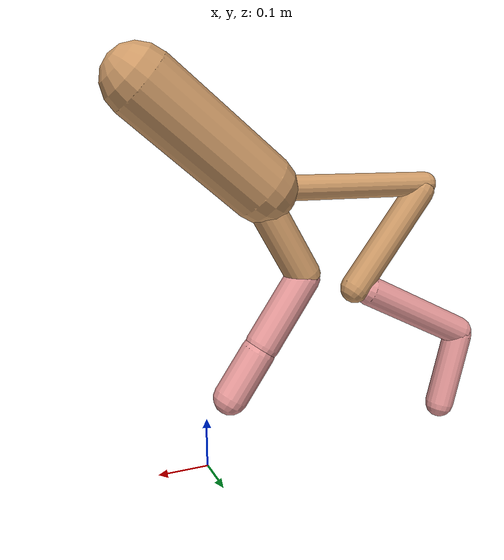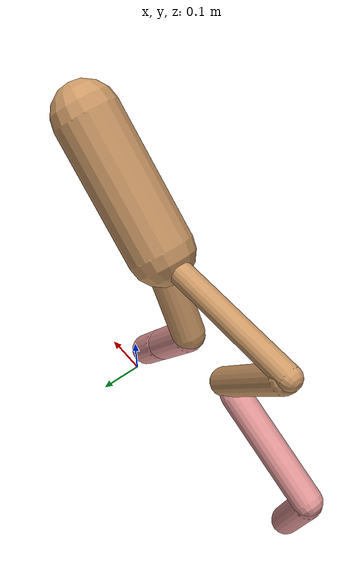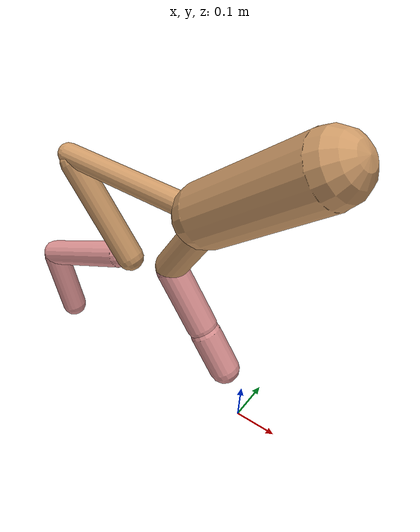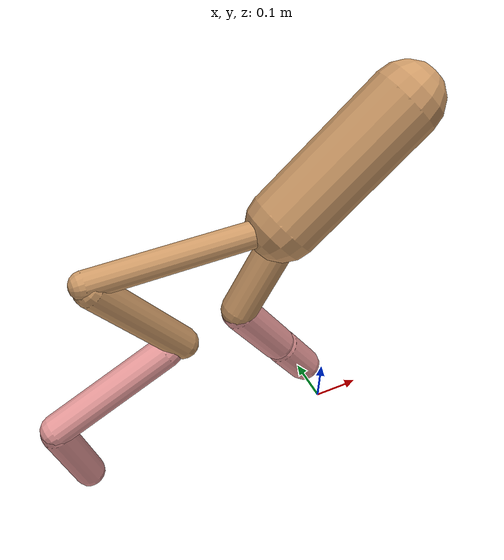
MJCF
<mujoco model="cheetah">
  <compiler angle="radian" coordinate="local" inertiafromgeom="true" settotalmass="14" />
  <default>
    <joint armature=".1" damping=".01" limited="true" solimplimit="0 .8 .03" solreflimit=".02 1" stiffness="8" />
    <geom conaffinity="0" condim="3" contype="1" friction="0.8 .1 .1" rgba="0.8 0.6 .4 1" solimp="0.0 0.8 0.01" solref="0.02 1" />
    <motor ctrllimited="true" ctrlrange="-1 1" />
  </default>
  <size nstack="300000" nuser_geom="1" />
  <option gravity="0 0 -9.81" timestep="0.01" />
  <worldbody>
    <body name="torso" pos="0.0 0.0 0.5551267130590015">
      <joint armature="0" axis="1 0 0" damping="0" limited="false" name="ignorex" pos="0 0 0" stiffness="0" type="slide" />
      <joint armature="0" axis="0 0 1" damping="0" limited="false" name="ignorez" pos="0 0 0" stiffness="0" type="slide" />
      <joint armature="0" axis="0 1 0" damping="0" limited="false" name="ignorey" pos="0 0 0" stiffness="0" type="hinge" />
      <geom fromto="-0.5 0.0 0.0 -0.10895453213267792 0.0 0.0" name="torso" size="0.02593383818380763" type="capsule" />
      <geom axisangle="0 1 0 .87" name="head" pos="-0.00895453213267794 0.0 0.1" size="0.07112518308470339 0.15" type="capsule" />

      <body name="bthigh" pos="-.5 0 0">
        <joint axis="0 1 0" damping="6" name="bthigh" pos="0 0 0" range="-.52 1.05" stiffness="240" type="hinge" />
        <geom axisangle="0 1 0 -3.8" name="bthigh" pos="0.08914579127872811 0.0 -0.11588952866234654" size="0.0322 0.12719777406233493" type="capsule" />
        <body name="bshin" pos="0.13829158255745622 0.0 -0.22177905732469308">
          <joint axis="0 1 0" damping="4.5" name="bshin" pos="0 0 0" range="-.785 .785" stiffness="180" type="hinge" />
          <geom axisangle="0 1 0 -2.03" name="bshin" pos="-0.12352814316658112 0.0 -0.06176407158329056" rgba="0.9 0.6 0.6 1" size="0.0322 0.13158390420241545" type="capsule" />
          <body name="bfoot" pos="-0.24705628633316223 0.0 -0.12352814316658112">
            <joint axis="0 1 0" damping="3" name="bfoot" pos="0 0 0" range="-.4 .785" stiffness="120" type="hinge" />
            <geom axisangle="0 1 0 -.27" name="bfoot" pos="0.026590056800492368 0.0 -0.08597451698825866" rgba="0.9 0.6 0.6 1" size="0.0322 0.08245924663351369" type="capsule" />
            <inertial mass="10" />
          </body>
        </body>
      </body>
      <body name="fthigh" pos="-0.10895453213267792 0.0 0.0">
        <joint axis="0 1 0" damping="4.5" name="fthigh" pos="0 0 0" range="-1.5 0.8" stiffness="180" type="hinge" />
        <geom axisangle="0 1 0 .52" name="fthigh" pos="-0.053104959181815486 0.0 -0.09103707288311225" size="0.03615533007213775 0.09946951310484332" type="capsule" />
        <body name="fshin" pos="-0.10620991836363097 0.0 -0.1820741457662245">
          <joint axis="0 1 0" damping="3" name="fshin" pos="0 0 0" range="-1.2 1.1" stiffness="120" type="hinge" />
          <geom axisangle="0 1 0 -.6" name="fshin" pos="0.04935361628308928 0.0 -0.06833577639196976" rgba="0.9 0.6 0.6 1" size="0.03615533007213775 0.07927645405348414" type="capsule" />
          <body name="ffoot" pos="0.09870723256617855 0.0 -0.13667155278393953">
            <joint axis="0 1 0" damping="1.5" name="ffoot" pos="0 0 0" range="-3.1 -0.3" stiffness="60" type="hinge" />
            <geom axisangle="0 1 0 -.6" name="ffoot" pos="0.03545691298474013 0.0 -0.05515519797626242" rgba="0.9 0.6 0.6 1" size="0.03615533007213775 0.0523523753183386" type="capsule" />
            <inertial mass="10" />
          </body>
        </body>
      </body>
    </body>
  </worldbody>
  <actuator>
    <motor gear="120" joint="bthigh" name="bthigh" />
    <motor gear="90" joint="bshin" name="bshin" />
    <motor gear="60" joint="bfoot" name="bfoot" />
    <motor gear="120" joint="fthigh" name="fthigh" />
    <motor gear="60" joint="fshin" name="fshin" />
    <motor gear="30" joint="ffoot" name="ffoot" />
  </actuator>
</mujoco>
